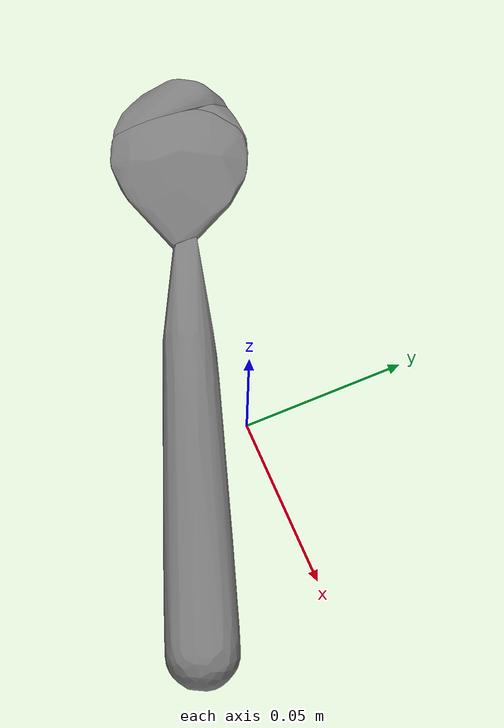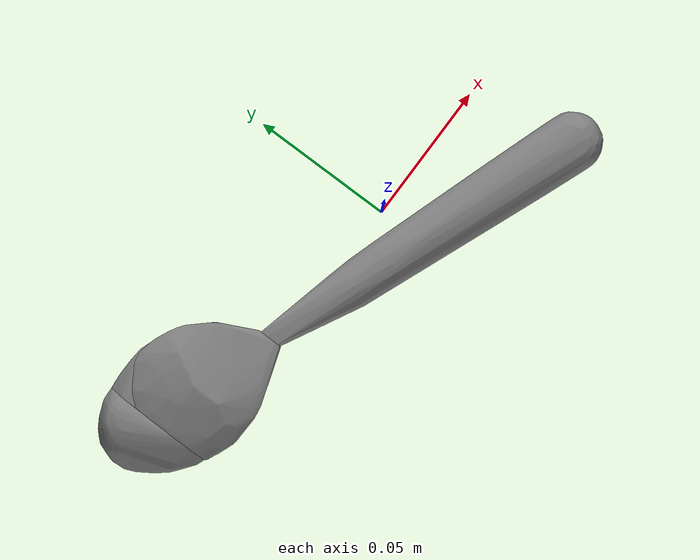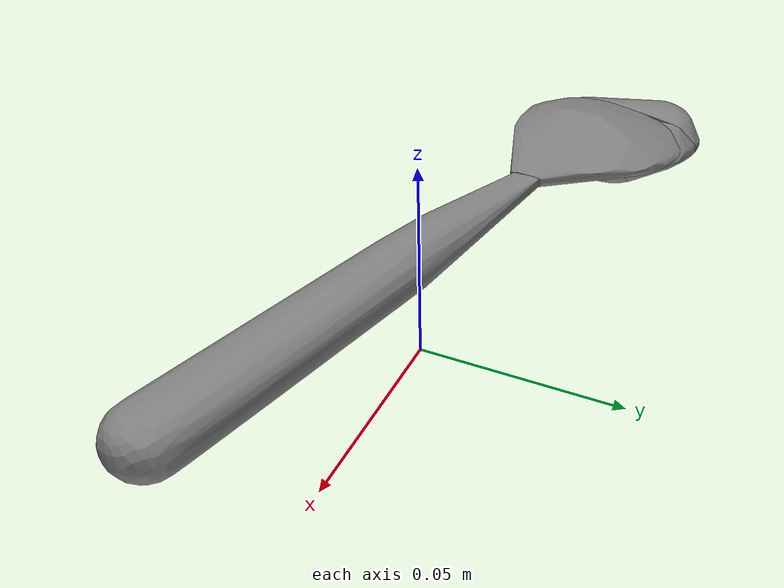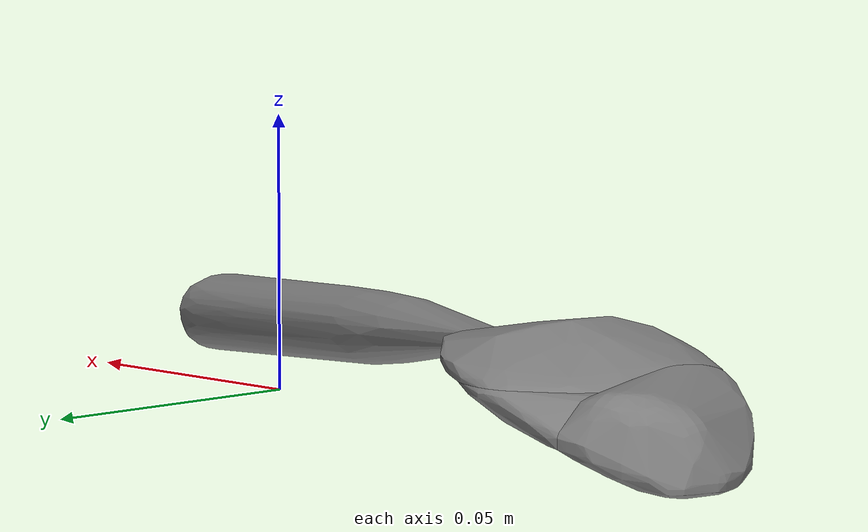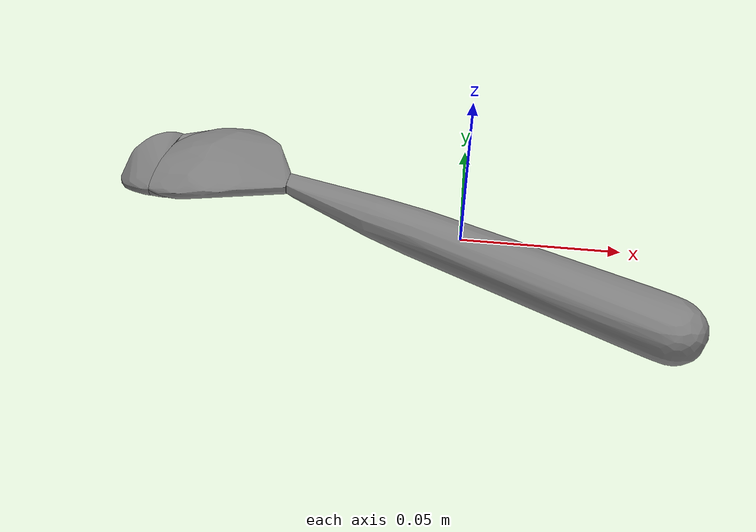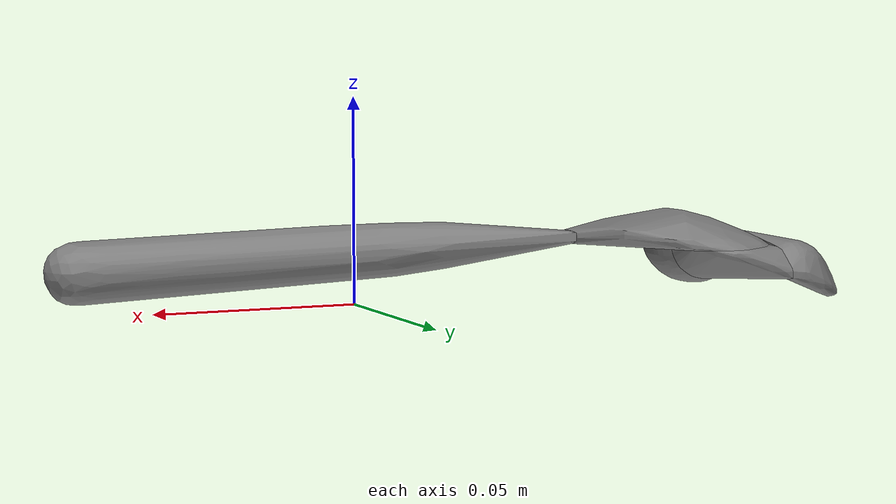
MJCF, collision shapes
<mujoco model="ycb_031_spoon">
  <compiler meshdir="meshes" texturedir="meshes" angle="radian"/>
  <default>
    <default class="visual"><geom contype="0" conaffinity="0" group="2" density="0"/></default>
    <default class="collision"><geom group="3"/></default>
  </default>
  <asset>
    <texture name="ycb_031_spoon_tex" type="2d" file="ycb_031_spoon_texture.png"/>
    <material name="ycb_031_spoon_mat" texture="ycb_031_spoon_tex" specular="0.2" shininess="0.3"/>
    <mesh name="ycb_031_spoon_visual" file="ycb_031_spoon_visual.obj"/>
    <mesh name="ycb_031_spoon_hull0" file="ycb_031_spoon_hull0.obj"/>
    <mesh name="ycb_031_spoon_hull1" file="ycb_031_spoon_hull1.obj"/>
    <mesh name="ycb_031_spoon_hull2" file="ycb_031_spoon_hull2.obj"/>
    <mesh name="ycb_031_spoon_hull3" file="ycb_031_spoon_hull3.obj"/>
    <mesh name="ycb_031_spoon_hull4" file="ycb_031_spoon_hull4.obj"/>
  </asset>
  <worldbody>
    <body name="object" pos="0 0 0">
      <freejoint name="object_free"/>
      <geom type="mesh" mesh="ycb_031_spoon_visual" material="ycb_031_spoon_mat" class="visual"/>
      <geom type="mesh" mesh="ycb_031_spoon_hull0" class="collision"/>
      <geom type="mesh" mesh="ycb_031_spoon_hull1" class="collision"/>
      <geom type="mesh" mesh="ycb_031_spoon_hull2" class="collision"/>
      <geom type="mesh" mesh="ycb_031_spoon_hull3" class="collision"/>
      <geom type="mesh" mesh="ycb_031_spoon_hull4" class="collision"/>
    </body>
  </worldbody>
</mujoco>
